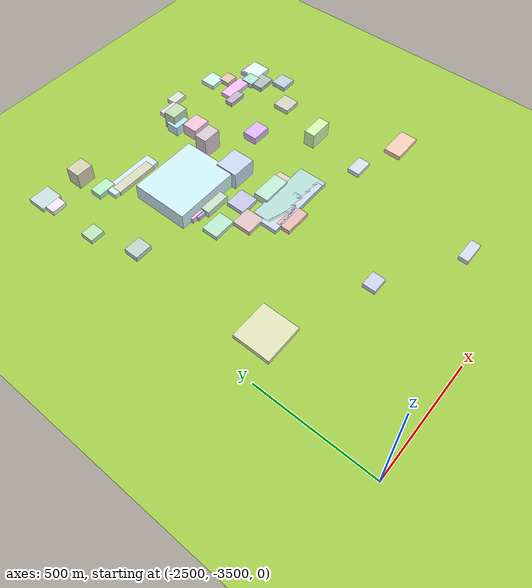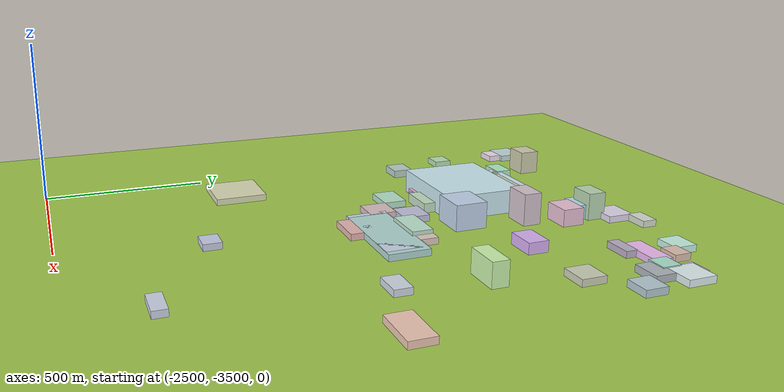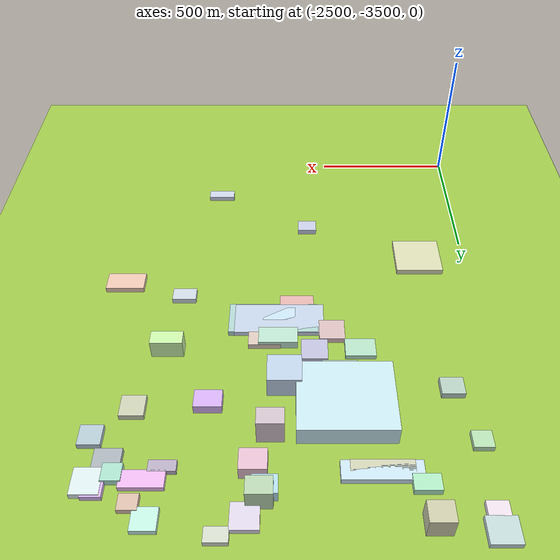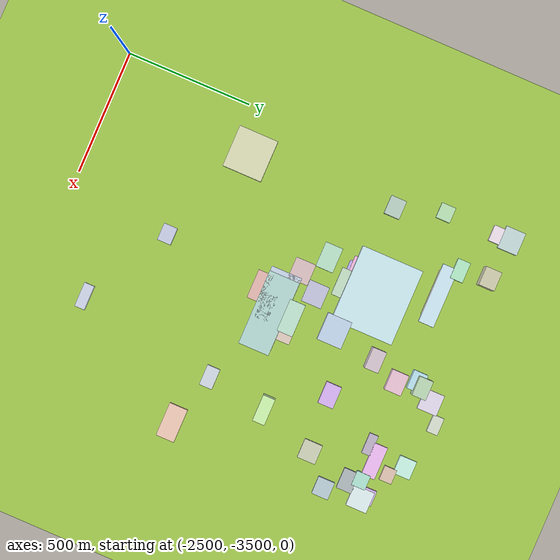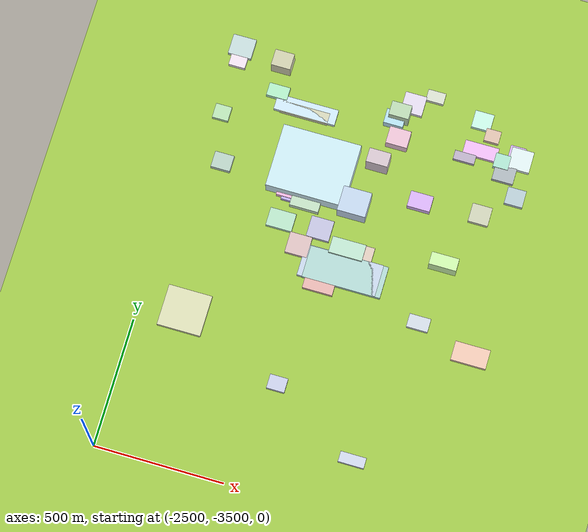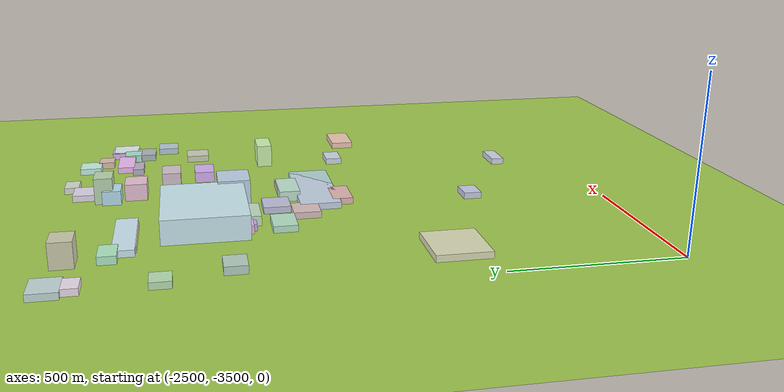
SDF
<sdf version="1.9">
 <world name="city_map">
  <model name="ground_plane">
   <static>1</static>
   <link name="link">
    <collision name="collision">
     <geometry><plane><normal>0 0 1</normal><size>11000 11000</size></plane></geometry>
    </collision>
    <visual name="visual">
     <geometry><plane><normal>0 0 1</normal><size>11000 11000</size></plane></geometry>
     <material>
      <ambient>0.551 0.712 0.210 1</ambient>
      <diffuse>0.651 0.812 0.310 1</diffuse>
      <specular>0.1 0.1 0.05 1</specular>
     </material>
    </visual>
   </link>
  </model>
  <model name="building_326319217">
   <static>1</static>
   <pose>-2018.5786108475324 -2255.2724180324576 36.724767064880695 0 0 0</pose>
   <link name="link">
    <collision name="collision">
     <geometry><box><size>305.3165999998697 248.4310970351964 73.44953412976139</size></box></geometry>
    </collision>
    <visual name="visual">
     <cast_shadows>false</cast_shadows>
     <geometry><box><size>305.3165999998697 248.4310970351964 73.44953412976139</size></box></geometry>
     <material>
      <ambient>0.723 0.847 0.877 1</ambient>
      <diffuse>0.823 0.947 0.977 1</diffuse>
      <specular>0.247 0.284 0.293 1</specular>
      <emissive>0.01 0.01 0.01 1</emissive>
     </material>
    </visual>
   </link>
  </model>
  <model name="building_61223779">
   <static>1</static>
   <pose>-1791.7270448795166 -2607.590526645111 10.0 0 0 0</pose>
   <link name="link">
    <collision name="collision">
     <geometry><box><size>304.0955999997976 124.93816768113481 20</size></box></geometry>
    </collision>
    <visual name="visual">
     <cast_shadows>false</cast_shadows>
     <geometry><box><size>304.0955999997976 124.93816768113481 20</size></box></geometry>
     <material>
      <ambient>0.623 0.773 0.753 1</ambient>
      <diffuse>0.723 0.873 0.853 1</diffuse>
      <specular>0.217 0.262 0.256 1</specular>
      <emissive>0.01 0.01 0.01 1</emissive>
     </material>
    </visual>
   </link>
  </model>
  <model name="building_915893079">
   <static>1</static>
   <pose>-1811.463014960854 -2606.2506277787925 10.0 0 0 0</pose>
   <link name="link">
    <collision name="collision">
     <geometry><box><size>304.19550000017637 124.85011825813397 20</size></box></geometry>
    </collision>
    <visual name="visual">
     <cast_shadows>false</cast_shadows>
     <geometry><box><size>304.19550000017637 124.85011825813397 20</size></box></geometry>
     <material>
      <ambient>0.704 0.762 0.839 1</ambient>
      <diffuse>0.804 0.862 0.939 1</diffuse>
      <specular>0.241 0.259 0.282 1</specular>
      <emissive>0.01 0.01 0.01 1</emissive>
     </material>
    </visual>
   </link>
  </model>
  <model name="building_222340166">
   <static>1</static>
   <pose>-2326.9395114199333 -2917.620494899928 10.0 0 0 0</pose>
   <link name="link">
    <collision name="collision">
     <geometry><box><size>168.81320425418346 159.40709999993175 20</size></box></geometry>
    </collision>
    <visual name="visual">
     <cast_shadows>false</cast_shadows>
     <geometry><box><size>168.81320425418346 159.40709999993175 20</size></box></geometry>
     <material>
      <ambient>0.785 0.793 0.639 1</ambient>
      <diffuse>0.885 0.893 0.739 1</diffuse>
      <specular>0.265 0.268 0.222 1</specular>
      <emissive>0.01 0.01 0.01 1</emissive>
     </material>
    </visual>
   </link>
  </model>
  <model name="building_98785060">
   <static>1</static>
   <pose>-2112.0683340377477 -2035.3852248672388 10.0 0 0 0</pose>
   <link name="link">
    <collision name="collision">
     <geometry><box><size>241.26959999988884 62.21849034540838 20</size></box></geometry>
    </collision>
    <visual name="visual">
     <cast_shadows>false</cast_shadows>
     <geometry><box><size>241.26959999988884 62.21849034540838 20</size></box></geometry>
     <material>
      <ambient>0.734 0.837 0.893 1</ambient>
      <diffuse>0.834 0.937 0.993 1</diffuse>
      <specular>0.250 0.281 0.298 1</specular>
      <emissive>0.01 0.01 0.01 1</emissive>
     </material>
    </visual>
   </link>
  </model>
  <model name="building_494993994">
   <static>1</static>
   <pose>-1830.4635102209481 -2350.927426469712 39.92739792390696 0 0 0</pose>
   <link name="link">
    <collision name="collision">
     <geometry><box><size>109.86780000070695 98.32778722680648 79.85479584781392</size></box></geometry>
    </collision>
    <visual name="visual">
     <cast_shadows>false</cast_shadows>
     <geometry><box><size>109.86780000070695 98.32778722680648 79.85479584781392</size></box></geometry>
     <material>
      <ambient>0.683 0.761 0.851 1</ambient>
      <diffuse>0.783 0.861 0.951 1</diffuse>
      <specular>0.235 0.258 0.285 1</specular>
      <emissive>0.01 0.01 0.01 1</emissive>
     </material>
    </visual>
   </link>
  </model>
  <model name="building_804416033">
   <static>1</static>
   <pose>-1255.9492728516611 -2784.0508249195755 10.0 0 0 0</pose>
   <link name="link">
    <collision name="collision">
     <geometry><box><size>135.2415691589651 74.4587999994053 20</size></box></geometry>
    </collision>
    <visual name="visual">
     <cast_shadows>false</cast_shadows>
     <geometry><box><size>135.2415691589651 74.4587999994053 20</size></box></geometry>
     <material>
      <ambient>0.866 0.711 0.633 1</ambient>
      <diffuse>0.966 0.811 0.733 1</diffuse>
      <specular>0.290 0.243 0.220 1</specular>
      <emissive>0.01 0.01 0.01 1</emissive>
     </material>
    </visual>
   </link>
  </model>
  <model name="building_159798576">
   <static>1</static>
   <pose>-2063.2974995810096 -2352.69885960897 12.0 0 0 0</pose>
   <link name="link">
    <collision name="collision">
     <geometry><box><size>127.4168999999361 75.81178947143619 24.0</size></box></geometry>
    </collision>
    <visual name="visual">
     <cast_shadows>false</cast_shadows>
     <geometry><box><size>127.4168999999361 75.81178947143619 24.0</size></box></geometry>
     <material>
      <ambient>0.885 0.648 0.815 1</ambient>
      <diffuse>0.985 0.748 0.915 1</diffuse>
      <specular>0.295 0.224 0.274 1</specular>
      <emissive>0.01 0.01 0.01 1</emissive>
     </material>
    </visual>
   </link>
  </model>
  <model name="building_425962475">
   <static>1</static>
   <pose>-2043.5123597385666 -2365.500039271031 10.0 0 0 0</pose>
   <link name="link">
    <collision name="collision">
     <geometry><box><size>122.59949999963737 70.56824375156661 20</size></box></geometry>
    </collision>
    <visual name="visual">
     <cast_shadows>false</cast_shadows>
     <geometry><box><size>122.59949999963737 70.56824375156661 20</size></box></geometry>
     <material>
      <ambient>0.675 0.612 0.877 1</ambient>
      <diffuse>0.775 0.712 0.977 1</diffuse>
      <specular>0.233 0.214 0.293 1</specular>
      <emissive>0.01 0.01 0.01 1</emissive>
     </material>
    </visual>
   </link>
  </model>
  <model name="building_20498572">
   <static>1</static>
   <pose>-1808.5350118577655 -2521.7835638767096 15.975057922795255 0 0 0</pose>
   <link name="link">
    <collision name="collision">
     <geometry><box><size>130.70249999968553 64.3331128840852 31.95011584559051</size></box></geometry>
    </collision>
    <visual name="visual">
     <cast_shadows>false</cast_shadows>
     <geometry><box><size>130.70249999968553 64.3331128840852 31.95011584559051</size></box></geometry>
     <material>
      <ambient>0.672 0.824 0.742 1</ambient>
      <diffuse>0.772 0.924 0.842 1</diffuse>
      <specular>0.232 0.277 0.253 1</specular>
      <emissive>0.01 0.01 0.01 1</emissive>
     </material>
    </visual>
   </link>
  </model>
  <model name="building_139766651">
   <static>1</static>
   <pose>-2113.882594178456 -2047.8175087673656 10.0 0 0 0</pose>
   <link name="link">
    <collision name="collision">
     <geometry><box><size>188.38920000026604 43.17050635606495 20</size></box></geometry>
    </collision>
    <visual name="visual">
     <cast_shadows>false</cast_shadows>
     <geometry><box><size>188.38920000026604 43.17050635606495 20</size></box></geometry>
     <material>
      <ambient>0.754 0.758 0.649 1</ambient>
      <diffuse>0.854 0.858 0.749 1</diffuse>
      <specular>0.256 0.257 0.225 1</specular>
      <emissive>0.01 0.01 0.01 1</emissive>
     </material>
    </visual>
   </link>
  </model>
  <model name="building_507058877">
   <static>1</static>
   <pose>-2418.5327327145064 -1860.3730026637318 10.0 0 0 0</pose>
   <link name="link">
    <collision name="collision">
     <geometry><box><size>91.35791498949342 80.01989999971926 20</size></box></geometry>
    </collision>
    <visual name="visual">
     <cast_shadows>false</cast_shadows>
     <geometry><box><size>91.35791498949342 80.01989999971926 20</size></box></geometry>
     <material>
      <ambient>0.695 0.783 0.780 1</ambient>
      <diffuse>0.795 0.883 0.880 1</diffuse>
      <specular>0.238 0.265 0.264 1</specular>
      <emissive>0.01 0.01 0.01 1</emissive>
     </material>
    </visual>
   </link>
  </model>
  <model name="building_981836048">
   <static>1</static>
   <pose>-1929.0454986509294 -2472.393158056727 10.0 0 0 0</pose>
   <link name="link">
    <collision name="collision">
     <geometry><box><size>88.02300000017738 81.96299989697307 20</size></box></geometry>
    </collision>
    <visual name="visual">
     <cast_shadows>false</cast_shadows>
     <geometry><box><size>88.02300000017738 81.96299989697307 20</size></box></geometry>
     <material>
      <ambient>0.687 0.686 0.797 1</ambient>
      <diffuse>0.787 0.786 0.897 1</diffuse>
      <specular>0.236 0.236 0.269 1</specular>
      <emissive>0.01 0.01 0.01 1</emissive>
     </material>
    </visual>
   </link>
  </model>
  <model name="building_839542940">
   <static>1</static>
   <pose>-1872.4639253242062 -2679.433568749072 10.0 0 0 0</pose>
   <link name="link">
    <collision name="collision">
     <geometry><box><size>116.70540000016416 61.767290579564 20</size></box></geometry>
    </collision>
    <visual name="visual">
     <cast_shadows>false</cast_shadows>
     <geometry><box><size>116.70540000016416 61.767290579564 20</size></box></geometry>
     <material>
      <ambient>0.825 0.637 0.615 1</ambient>
      <diffuse>0.925 0.737 0.715 1</diffuse>
      <specular>0.277 0.221 0.215 1</specular>
      <emissive>0.01 0.01 0.01 1</emissive>
     </material>
    </visual>
   </link>
  </model>
  <model name="building_305228356">
   <static>1</static>
   <pose>-2080.8706866072393 -2479.4584505491057 10.0 0 0 0</pose>
   <link name="link">
    <collision name="collision">
     <geometry><box><size>101.06549999958503 71.21840136044317 20</size></box></geometry>
    </collision>
    <visual name="visual">
     <cast_shadows>false</cast_shadows>
     <geometry><box><size>101.06549999958503 71.21840136044317 20</size></box></geometry>
     <material>
      <ambient>0.642 0.818 0.710 1</ambient>
      <diffuse>0.742 0.918 0.810 1</diffuse>
      <specular>0.223 0.275 0.243 1</specular>
      <emissive>0.01 0.01 0.01 1</emissive>
     </material>
    </visual>
   </link>
  </model>
  <model name="building_401194661">
   <static>1</static>
   <pose>-1274.1425863419242 -2001.0050592468795 10.5 0 0 0</pose>
   <link name="link">
    <collision name="collision">
     <geometry><box><size>85.24799999929655 84.35367759540333 21.0</size></box></geometry>
    </collision>
    <visual name="visual">
     <cast_shadows>false</cast_shadows>
     <geometry><box><size>85.24799999929655 84.35367759540333 21.0</size></box></geometry>
     <material>
      <ambient>0.806 0.868 0.872 1</ambient>
      <diffuse>0.906 0.968 0.972 1</diffuse>
      <specular>0.272 0.291 0.292 1</specular>
      <emissive>0.01 0.01 0.01 1</emissive>
     </material>
    </visual>
   </link>
  </model>
  <model name="building_706096459">
   <static>1</static>
   <pose>-1429.1434111309886 -2007.9806876454502 10.0 0 0 0</pose>
   <link name="link">
    <collision name="collision">
     <geometry><box><size>131.66819999992896 54.44750492556955 20</size></box></geometry>
    </collision>
    <visual name="visual">
     <cast_shadows>false</cast_shadows>
     <geometry><box><size>131.66819999992896 54.44750492556955 20</size></box></geometry>
     <material>
      <ambient>0.865 0.663 0.882 1</ambient>
      <diffuse>0.965 0.763 0.982 1</diffuse>
      <specular>0.290 0.229 0.295 1</specular>
      <emissive>0.01 0.01 0.01 1</emissive>
     </material>
    </visual>
   </link>
  </model>
  <model name="building_773311579">
   <static>1</static>
   <pose>-1989.8619622465496 -2555.2488060407213 10.0 0 0 0</pose>
   <link name="link">
    <collision name="collision">
     <geometry><box><size>86.04719999996036 81.56570154618 20</size></box></geometry>
    </collision>
    <visual name="visual">
     <cast_shadows>false</cast_shadows>
     <geometry><box><size>86.04719999996036 81.56570154618 20</size></box></geometry>
     <material>
      <ambient>0.786 0.674 0.677 1</ambient>
      <diffuse>0.886 0.774 0.777 1</diffuse>
      <specular>0.266 0.232 0.233 1</specular>
      <emissive>0.01 0.01 0.01 1</emissive>
     </material>
    </visual>
   </link>
  </model>
  <model name="building_24010920">
   <static>1</static>
   <pose>-1724.1523643038504 -1899.0581219889536 10.0 0 0 0</pose>
   <link name="link">
    <collision name="collision">
     <geometry><box><size>83.77170000018452 80.07494688382077 20</size></box></geometry>
    </collision>
    <visual name="visual">
     <cast_shadows>false</cast_shadows>
     <geometry><box><size>83.77170000018452 80.07494688382077 20</size></box></geometry>
     <material>
      <ambient>0.813 0.782 0.857 1</ambient>
      <diffuse>0.913 0.882 0.957 1</diffuse>
      <specular>0.274 0.265 0.287 1</specular>
      <emissive>0.01 0.01 0.01 1</emissive>
     </material>
    </visual>
   </link>
  </model>
  <model name="building_278216430">
   <static>1</static>
   <pose>-1763.1326390533438 -2517.0324517605895 10.0 0 0 0</pose>
   <link name="link">
    <collision name="collision">
     <geometry><box><size>108.28050000029776 55.79118721149461 20</size></box></geometry>
    </collision>
    <visual name="visual">
     <cast_shadows>false</cast_shadows>
     <geometry><box><size>108.28050000029776 55.79118721149461 20</size></box></geometry>
     <material>
      <ambient>0.799 0.722 0.669 1</ambient>
      <diffuse>0.899 0.822 0.769 1</diffuse>
      <specular>0.270 0.247 0.231 1</specular>
      <emissive>0.01 0.01 0.01 1</emissive>
     </material>
    </visual>
   </link>
  </model>
  <model name="building_435126502">
   <static>1</static>
   <pose>-1811.2779638114937 -2627.111351992023 10.0 0 0 0</pose>
   <link name="link">
    <collision name="collision">
     <geometry><box><size>108.71340000062446 55.35986344687358 20</size></box></geometry>
    </collision>
    <visual name="visual">
     <cast_shadows>false</cast_shadows>
     <geometry><box><size>108.71340000062446 55.35986344687358 20</size></box></geometry>
     <material>
      <ambient>0.725 0.831 0.884 1</ambient>
      <diffuse>0.825 0.931 0.984 1</diffuse>
      <specular>0.248 0.279 0.295 1</specular>
      <emissive>0.01 0.01 0.01 1</emissive>
     </material>
    </visual>
   </link>
  </model>
  <model name="building_794474009">
   <static>1</static>
   <pose>-2010.3561627625027 -2390.9837361649315 15.0 0 0 0</pose>
   <link name="link">
    <collision name="collision">
     <geometry><box><size>112.32090000019213 52.58674429019833 30.0</size></box></geometry>
    </collision>
    <visual name="visual">
     <cast_shadows>false</cast_shadows>
     <geometry><box><size>112.32090000019213 52.58674429019833 30.0</size></box></geometry>
     <material>
      <ambient>0.687 0.801 0.691 1</ambient>
      <diffuse>0.787 0.901 0.791 1</diffuse>
      <specular>0.236 0.270 0.237 1</specular>
      <emissive>0.01 0.01 0.01 1</emissive>
     </material>
    </visual>
   </link>
  </model>
  <model name="building_249022645">
   <static>1</static>
   <pose>-1364.8024266497305 -2251.296962817727 10.5 0 0 0</pose>
   <link name="link">
    <collision name="collision">
     <geometry><box><size>77.48910000011477 73.57340885146759 21.0</size></box></geometry>
    </collision>
    <visual name="visual">
     <cast_shadows>false</cast_shadows>
     <geometry><box><size>77.48910000011477 73.57340885146759 21.0</size></box></geometry>
     <material>
      <ambient>0.729 0.746 0.642 1</ambient>
      <diffuse>0.829 0.846 0.742 1</diffuse>
      <specular>0.249 0.254 0.222 1</specular>
      <emissive>0.01 0.01 0.01 1</emissive>
     </material>
    </visual>
   </link>
  </model>
  <model name="building_909318760">
   <static>1</static>
   <pose>-1742.2197165792932 -2052.973027500642 26.23456479920632 0 0 0</pose>
   <link name="link">
    <collision name="collision">
     <geometry><box><size>83.38319999958799 67.95525885421377 52.46912959841264</size></box></geometry>
    </collision>
    <visual name="visual">
     <cast_shadows>false</cast_shadows>
     <geometry><box><size>83.38319999958799 67.95525885421377 52.46912959841264</size></box></geometry>
     <material>
      <ambient>0.845 0.685 0.760 1</ambient>
      <diffuse>0.945 0.785 0.860 1</diffuse>
      <specular>0.283 0.235 0.258 1</specular>
      <emissive>0.01 0.01 0.01 1</emissive>
     </material>
    </visual>
   </link>
  </model>
  <model name="building_185943626">
   <static>1</static>
   <pose>-1595.3510974711814 -2267.9407584300525 17.27564251313122 0 0 0</pose>
   <link name="link">
    <collision name="collision">
     <geometry><box><size>88.49364940919591 62.3264999995925 34.55128502626244</size></box></geometry>
    </collision>
    <visual name="visual">
     <cast_shadows>false</cast_shadows>
     <geometry><box><size>88.49364940919591 62.3264999995925 34.55128502626244</size></box></geometry>
     <material>
      <ambient>0.771 0.620 0.888 1</ambient>
      <diffuse>0.871 0.720 0.988 1</diffuse>
      <specular>0.261 0.216 0.296 1</specular>
      <emissive>0.01 0.01 0.01 1</emissive>
     </material>
    </visual>
   </link>
  </model>
  <model name="building_874912877">
   <static>1</static>
   <pose>-1445.7878058164229 -2478.448317645972 36.06671018598149 0 0 0</pose>
   <link name="link">
    <collision name="collision">
     <geometry><box><size>106.28249999982131 49.18853172668056 72.13342037196298</size></box></geometry>
    </collision>
    <visual name="visual">
     <cast_shadows>false</cast_shadows>
     <geometry><box><size>106.28249999982131 49.18853172668056 72.13342037196298</size></box></geometry>
     <material>
      <ambient>0.731 0.892 0.602 1</ambient>
      <diffuse>0.831 0.992 0.702 1</diffuse>
      <specular>0.249 0.297 0.211 1</specular>
      <emissive>0.01 0.01 0.01 1</emissive>
     </material>
    </visual>
   </link>
  </model>
  <model name="building_947116432">
   <static>1</static>
   <pose>-1319.7605166632416 -2072.090384475075 10.5 0 0 0</pose>
   <link name="link">
    <collision name="collision">
     <geometry><box><size>82.895234957444 62.91480000015781 21.0</size></box></geometry>
    </collision>
    <visual name="visual">
     <cast_shadows>false</cast_shadows>
     <geometry><box><size>82.895234957444 62.91480000015781 21.0</size></box></geometry>
     <material>
      <ambient>0.605 0.638 0.660 1</ambient>
      <diffuse>0.705 0.738 0.760 1</diffuse>
      <specular>0.211 0.221 0.228 1</specular>
      <emissive>0.01 0.01 0.01 1</emissive>
     </material>
    </visual>
   </link>
  </model>
  <model name="building_386184305">
   <static>1</static>
   <pose>-1453.107072608492 -1890.8412036746938 10.0 0 0 0</pose>
   <link name="link">
    <collision name="collision">
     <geometry><box><size>74.30444844044771 68.287199999844 20</size></box></geometry>
    </collision>
    <visual name="visual">
     <cast_shadows>false</cast_shadows>
     <geometry><box><size>74.30444844044771 68.287199999844 20</size></box></geometry>
     <material>
      <ambient>0.708 0.889 0.826 1</ambient>
      <diffuse>0.808 0.989 0.926 1</diffuse>
      <specular>0.242 0.297 0.278 1</specular>
      <emissive>0.01 0.01 0.01 1</emissive>
     </material>
    </visual>
   </link>
  </model>
  <model name="building_181956669">
   <static>1</static>
   <pose>-2248.332094937369 -1885.1747602835644 37.76382974808844 0 0 0</pose>
   <link name="link">
    <collision name="collision">
     <geometry><box><size>75.73530000012596 64.12869752930773 75.52765949617688</size></box></geometry>
    </collision>
    <visual name="visual">
     <cast_shadows>false</cast_shadows>
     <geometry><box><size>75.73530000012596 64.12869752930773 75.52765949617688</size></box></geometry>
     <material>
      <ambient>0.733 0.729 0.602 1</ambient>
      <diffuse>0.833 0.829 0.702 1</diffuse>
      <specular>0.250 0.249 0.211 1</specular>
      <emissive>0.01 0.01 0.01 1</emissive>
     </material>
    </visual>
   </link>
  </model>
  <model name="building_347571306">
   <static>1</static>
   <pose>-1255.8164525756717 -2148.647366285977 10.5 0 0 0</pose>
   <link name="link">
    <collision name="collision">
     <geometry><box><size>70.92899999995694 67.15271317305545 21.0</size></box></geometry>
    </collision>
    <visual name="visual">
     <cast_shadows>false</cast_shadows>
     <geometry><box><size>70.92899999995694 67.15271317305545 21.0</size></box></geometry>
     <material>
      <ambient>0.639 0.721 0.755 1</ambient>
      <diffuse>0.739 0.821 0.855 1</diffuse>
      <specular>0.222 0.246 0.257 1</specular>
      <emissive>0.01 0.01 0.01 1</emissive>
     </material>
    </visual>
   </link>
  </model>
  <model name="building_178034542">
   <static>1</static>
   <pose>-2358.433090143419 -2322.8407894841766 12.0 0 0 0</pose>
   <link name="link">
    <collision name="collision">
     <geometry><box><size>74.94627433345427 63.4142999996854 24.0</size></box></geometry>
    </collision>
    <visual name="visual">
     <cast_shadows>false</cast_shadows>
     <geometry><box><size>74.94627433345427 63.4142999996854 24.0</size></box></geometry>
     <material>
      <ambient>0.646 0.743 0.694 1</ambient>
      <diffuse>0.746 0.843 0.794 1</diffuse>
      <specular>0.224 0.253 0.238 1</specular>
      <emissive>0.01 0.01 0.01 1</emissive>
     </material>
    </visual>
   </link>
  </model>
  <model name="building_489129959">
   <static>1</static>
   <pose>-1790.0513717395409 -2164.537363030766 48.60644320384226 0 0 0</pose>
   <link name="link">
    <collision name="collision">
     <geometry><box><size>84.58200000018934 55.55080729879295 97.21288640768452</size></box></geometry>
    </collision>
    <visual name="visual">
     <cast_shadows>false</cast_shadows>
     <geometry><box><size>84.58200000018934 55.55080729879295 97.21288640768452</size></box></geometry>
     <material>
      <ambient>0.759 0.694 0.733 1</ambient>
      <diffuse>0.859 0.794 0.833 1</diffuse>
      <specular>0.258 0.238 0.250 1</specular>
      <emissive>0.01 0.01 0.01 1</emissive>
     </material>
    </visual>
   </link>
  </model>
  <model name="building_160015856">
   <static>1</static>
   <pose>-1762.8218113510131 -1956.6996513217339 41.212057297818575 0 0 0</pose>
   <link name="link">
    <collision name="collision">
     <geometry><box><size>77.77770000033257 55.9605815521017 82.42411459563715</size></box></geometry>
    </collision>
    <visual name="visual">
     <cast_shadows>false</cast_shadows>
     <geometry><box><size>77.77770000033257 55.9605815521017 82.42411459563715</size></box></geometry>
     <material>
      <ambient>0.655 0.771 0.628 1</ambient>
      <diffuse>0.755 0.871 0.728 1</diffuse>
      <specular>0.226 0.261 0.218 1</specular>
      <emissive>0.01 0.01 0.01 1</emissive>
     </material>
    </visual>
   </link>
  </model>
  <model name="building_17304422">
   <static>1</static>
   <pose>-1776.5761637849503 -1980.440167186233 22.135276425897125 0 0 0</pose>
   <link name="link">
    <collision name="collision">
     <geometry><box><size>75.7991222787966 57.142800000534066 44.27055285179425</size></box></geometry>
    </collision>
    <visual name="visual">
     <cast_shadows>false</cast_shadows>
     <geometry><box><size>75.7991222787966 57.142800000534066 44.27055285179425</size></box></geometry>
     <material>
      <ambient>0.637 0.808 0.867 1</ambient>
      <diffuse>0.737 0.908 0.967 1</diffuse>
      <specular>0.221 0.272 0.290 1</specular>
      <emissive>0.01 0.01 0.01 1</emissive>
     </material>
    </visual>
   </link>
  </model>
  <model name="building_291537829">
   <static>1</static>
   <pose>-1474.5642327027736 -2719.643452965104 10.0 0 0 0</pose>
   <link name="link">
    <collision name="collision">
     <geometry><box><size>82.5548775010602 52.42529999982537 20</size></box></geometry>
    </collision>
    <visual name="visual">
     <cast_shadows>false</cast_shadows>
     <geometry><box><size>82.5548775010602 52.42529999982537 20</size></box></geometry>
     <material>
      <ambient>0.745 0.781 0.823 1</ambient>
      <diffuse>0.845 0.881 0.923 1</diffuse>
      <specular>0.254 0.264 0.277 1</specular>
      <emissive>0.01 0.01 0.01 1</emissive>
     </material>
    </visual>
   </link>
  </model>
  <model name="building_299743148">
   <static>1</static>
   <pose>-2234.108161622093 -1996.5389402881938 12.0 0 0 0</pose>
   <link name="link">
    <collision name="collision">
     <geometry><box><size>81.61830000025816 51.11627189590378 24.0</size></box></geometry>
    </collision>
    <visual name="visual">
     <cast_shadows>false</cast_shadows>
     <geometry><box><size>81.61830000025816 51.11627189590378 24.0</size></box></geometry>
     <material>
      <ambient>0.618 0.855 0.704 1</ambient>
      <diffuse>0.718 0.955 0.804 1</diffuse>
      <specular>0.216 0.287 0.241 1</specular>
      <emissive>0.01 0.01 0.01 1</emissive>
     </material>
    </visual>
   </link>
  </model>
  <model name="building_609427983">
   <static>1</static>
   <pose>-1569.2167042103379 -3286.2848363370667 10.0 0 0 0</pose>
   <link name="link">
    <collision name="collision">
     <geometry><box><size>98.7233999998196 40.72124833998833 20</size></box></geometry>
    </collision>
    <visual name="visual">
     <cast_shadows>false</cast_shadows>
     <geometry><box><size>98.7233999998196 40.72124833998833 20</size></box></geometry>
     <material>
      <ambient>0.737 0.767 0.844 1</ambient>
      <diffuse>0.837 0.867 0.944 1</diffuse>
      <specular>0.251 0.260 0.283 1</specular>
      <emissive>0.01 0.01 0.01 1</emissive>
     </material>
    </visual>
   </link>
  </model>
  <model name="building_110941289">
   <static>1</static>
   <pose>-1915.6571201772172 -3088.0296285889813 10.0 0 0 0</pose>
   <link name="link">
    <collision name="collision">
     <geometry><box><size>69.30780509475483 54.96719999955957 20</size></box></geometry>
    </collision>
    <visual name="visual">
     <cast_shadows>false</cast_shadows>
     <geometry><box><size>69.30780509475483 54.96719999955957 20</size></box></geometry>
     <material>
      <ambient>0.714 0.734 0.834 1</ambient>
      <diffuse>0.814 0.834 0.934 1</diffuse>
      <specular>0.244 0.250 0.280 1</specular>
      <emissive>0.01 0.01 0.01 1</emissive>
     </material>
    </visual>
   </link>
  </model>
  <model name="building_521560497">
   <static>1</static>
   <pose>-2416.904475351826 -2135.4207297599214 10.0 0 0 0</pose>
   <link name="link">
    <collision name="collision">
     <geometry><box><size>62.381812829046105 57.46469999956361 20</size></box></geometry>
    </collision>
    <visual name="visual">
     <cast_shadows>false</cast_shadows>
     <geometry><box><size>62.381812829046105 57.46469999956361 20</size></box></geometry>
     <material>
      <ambient>0.649 0.812 0.636 1</ambient>
      <diffuse>0.749 0.912 0.736 1</diffuse>
      <specular>0.225 0.274 0.221 1</specular>
      <emissive>0.01 0.01 0.01 1</emissive>
     </material>
    </visual>
   </link>
  </model>
  <model name="building_66771726">
   <static>1</static>
   <pose>-1341.0767736167743 -2026.9757019977624 12.0 0 0 0</pose>
   <link name="link">
    <collision name="collision">
     <geometry><box><size>58.45260000006647 56.049106376800026 24.0</size></box></geometry>
    </collision>
    <visual name="visual">
     <cast_shadows>false</cast_shadows>
     <geometry><box><size>58.45260000006647 56.049106376800026 24.0</size></box></geometry>
     <material>
      <ambient>0.601 0.818 0.739 1</ambient>
      <diffuse>0.701 0.918 0.839 1</diffuse>
      <specular>0.210 0.275 0.252 1</specular>
      <emissive>0.01 0.01 0.01 1</emissive>
     </material>
    </visual>
   </link>
  </model>
  <model name="building_690945742">
   <static>1</static>
   <pose>-1294.051795363186 -1978.4663109285566 10.0 0 0 0</pose>
   <link name="link">
    <collision name="collision">
     <geometry><box><size>61.0943999993907 51.1565997267288 20</size></box></geometry>
    </collision>
    <visual name="visual">
     <cast_shadows>false</cast_shadows>
     <geometry><box><size>61.0943999993907 51.1565997267288 20</size></box></geometry>
     <material>
      <ambient>0.784 0.650 0.885 1</ambient>
      <diffuse>0.884 0.750 0.985 1</diffuse>
      <specular>0.265 0.225 0.296 1</specular>
      <emissive>0.01 0.01 0.01 1</emissive>
     </material>
    </visual>
   </link>
  </model>
  <model name="building_717701663">
   <static>1</static>
   <pose>-1650.229528678742 -1848.2379898400882 10.0 0 0 0</pose>
   <link name="link">
    <collision name="collision">
     <geometry><box><size>69.80375818587997 44.54430000000542 20</size></box></geometry>
    </collision>
    <visual name="visual">
     <cast_shadows>false</cast_shadows>
     <geometry><box><size>69.80375818587997 44.54430000000542 20</size></box></geometry>
     <material>
      <ambient>0.771 0.798 0.740 1</ambient>
      <diffuse>0.871 0.898 0.840 1</diffuse>
      <specular>0.261 0.269 0.252 1</specular>
      <emissive>0.01 0.01 0.01 1</emissive>
     </material>
    </visual>
   </link>
  </model>
  <model name="building_600584227">
   <static>1</static>
   <pose>-1481.6338672308757 -2049.3834635539174 10.0 0 0 0</pose>
   <link name="link">
    <collision name="collision">
     <geometry><box><size>82.82066159688473 35.89739999991082 20</size></box></geometry>
    </collision>
    <visual name="visual">
     <cast_shadows>false</cast_shadows>
     <geometry><box><size>82.82066159688473 35.89739999991082 20</size></box></geometry>
     <material>
      <ambient>0.659 0.613 0.703 1</ambient>
      <diffuse>0.759 0.713 0.803 1</diffuse>
      <specular>0.228 0.214 0.241 1</specular>
      <emissive>0.01 0.01 0.01 1</emissive>
     </material>
    </visual>
   </link>
  </model>
  <model name="building_37209119">
   <static>1</static>
   <pose>-2087.5922672796364 -2298.364258970933 25.51860979256823 0 0 0</pose>
   <link name="link">
    <collision name="collision">
     <geometry><box><size>105.27240000063642 28.238869680262745 51.03721958513646</size></box></geometry>
    </collision>
    <visual name="visual">
     <cast_shadows>false</cast_shadows>
     <geometry><box><size>105.27240000063642 28.238869680262745 51.03721958513646</size></box></geometry>
     <material>
      <ambient>0.885 0.613 0.806 1</ambient>
      <diffuse>0.985 0.713 0.906 1</diffuse>
      <specular>0.296 0.214 0.272 1</specular>
      <emissive>0.01 0.01 0.01 1</emissive>
     </material>
    </visual>
   </link>
  </model>
  <model name="building_504635268">
   <static>1</static>
   <pose>-1401.414154463557 -1939.4345394758634 10.5 0 0 0</pose>
   <link name="link">
    <collision name="collision">
     <geometry><box><size>57.95309999975018 50.02780153624519 21.0</size></box></geometry>
    </collision>
    <visual name="visual">
     <cast_shadows>false</cast_shadows>
     <geometry><box><size>57.95309999975018 50.02780153624519 21.0</size></box></geometry>
     <material>
      <ambient>0.795 0.677 0.608 1</ambient>
      <diffuse>0.895 0.777 0.708 1</diffuse>
      <specular>0.269 0.233 0.213 1</specular>
      <emissive>0.01 0.01 0.01 1</emissive>
     </material>
    </visual>
   </link>
  </model>
  <model name="building_738658158">
   <static>1</static>
   <pose>-2416.7138986072864 -1921.807082366371 10.0 0 0 0</pose>
   <link name="link">
    <collision name="collision">
     <geometry><box><size>64.7906999999961 43.72354057620133 20</size></box></geometry>
    </collision>
    <visual name="visual">
     <cast_shadows>false</cast_shadows>
     <geometry><box><size>64.7906999999961 43.72354057620133 20</size></box></geometry>
     <material>
      <ambient>0.867 0.811 0.863 1</ambient>
      <diffuse>0.967 0.911 0.963 1</diffuse>
      <specular>0.290 0.273 0.289 1</specular>
      <emissive>0.01 0.01 0.01 1</emissive>
     </material>
    </visual>
   </link>
  </model>
 </world>
</sdf>
